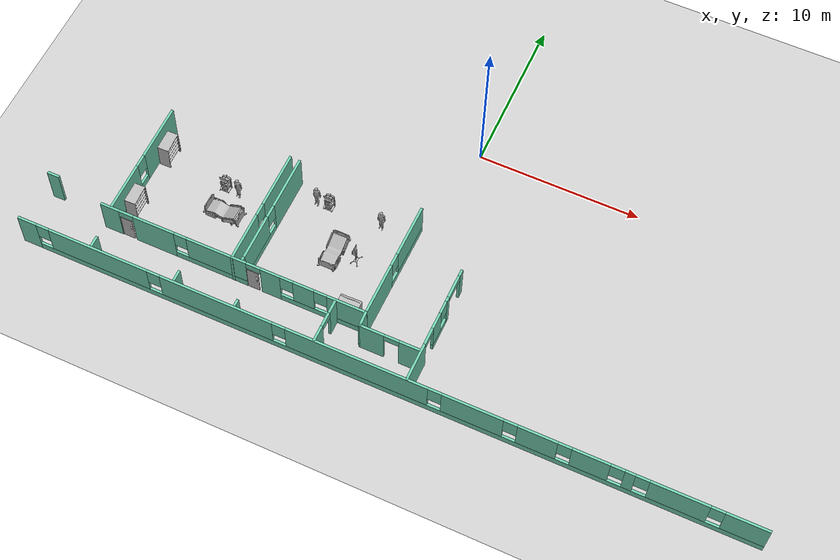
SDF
<sdf version="1.6">
 <world name="default">
  <model name="ground_plane">
   <static>1</static>
   <link name="link">
    <collision name="collision">
     <geometry><plane><normal>0 0 1</normal><size>100 100</size></plane></geometry>
     <surface><friction><ode><mu>100</mu><mu2>50</mu2></ode></friction></surface>
    </collision>
    <visual name="visual">
     <cast_shadows>0</cast_shadows>
     <geometry><plane><normal>0 0 1</normal><size>100 100</size></plane></geometry>
     <material>
      <script><uri>file://media/materials/scripts/gazebo.material</uri><name>Gazebo/Grey</name></script>
     </material>
    </visual>
   </link>
  </model>
  <model name="Hospital_empty">
   <pose>0.7078 0.61575 0 0 -0 0</pose>
   <link name="Wall_1">
    <pose>0.002999 -16.937 0 0 -0 0</pose>
    <visual name="Wall_1_Visual_0">
     <pose>-21.7746 0 1.25 0 -0 0</pose>
     <geometry><box><size>1.20077 0.15 2.5</size></box></geometry>
     <material>
      <script><uri>file://media/materials/scripts/gazebo.material</uri><name>Gazebo/Grey</name></script>
      <ambient>0.435294 0.796078 0.67451 1</ambient>
     </material>
    </visual>
    <collision name="Wall_1_Collision_0">
     <geometry><box><size>1.20077 0.15 2.5</size></box></geometry>
     <pose>-21.7746 0 1.25 0 -0 0</pose>
    </collision>
    <visual name="Wall_1_Visual_1">
     <pose>0.600387 0 0.25 0 -0 0</pose>
     <geometry><box><size>43.5492 0.15 0.5</size></box></geometry>
     <material>
      <script><uri>file://media/materials/scripts/gazebo.material</uri><name>Gazebo/Grey</name></script>
      <ambient>0.435294 0.796078 0.67451 1</ambient>
     </material>
    </visual>
    <collision name="Wall_1_Collision_1">
     <geometry><box><size>43.5492 0.15 0.5</size></box></geometry>
     <pose>0.600387 0 0.25 0 -0 0</pose>
    </collision>
    <visual name="Wall_1_Visual_2">
     <pose>-17.2192 0 1.5 0 -0 0</pose>
     <geometry><box><size>6.31 0.15 2</size></box></geometry>
     <material>
      <script><uri>file://media/materials/scripts/gazebo.material</uri><name>Gazebo/Grey</name></script>
      <ambient>0.435294 0.796078 0.67451 1</ambient>
     </material>
    </visual>
    <collision name="Wall_1_Collision_2">
     <geometry><box><size>6.31 0.15 2</size></box></geometry>
     <pose>-17.2192 0 1.5 0 -0 0</pose>
    </collision>
    <visual name="Wall_1_Visual_3">
     <pose>-9.77173 0 1.5 0 -0 0</pose>
     <geometry><box><size>6.985 0.15 2</size></box></geometry>
     <material>
      <script><uri>file://media/materials/scripts/gazebo.material</uri><name>Gazebo/Grey</name></script>
      <ambient>0.435294 0.796078 0.67451 1</ambient>
     </material>
    </visual>
    <collision name="Wall_1_Collision_3">
     <geometry><box><size>6.985 0.15 2</size></box></geometry>
     <pose>-9.77173 0 1.5 0 -0 0</pose>
    </collision>
    <visual name="Wall_1_Visual_4">
     <pose>-1.19923 0 1.5 0 -0 0</pose>
     <geometry><box><size>8.56 0.15 2</size></box></geometry>
     <material>
      <script><uri>file://media/materials/scripts/gazebo.material</uri><name>Gazebo/Grey</name></script>
      <ambient>0.435294 0.796078 0.67451 1</ambient>
     </material>
    </visual>
    <collision name="Wall_1_Collision_4">
     <geometry><box><size>8.56 0.15 2</size></box></geometry>
     <pose>-1.19923 0 1.5 0 -0 0</pose>
    </collision>
    <visual name="Wall_1_Visual_5">
     <pose>5.68577 0 1.5 0 -0 0</pose>
     <geometry><box><size>3.61 0.15 2</size></box></geometry>
     <material>
      <script><uri>file://media/materials/scripts/gazebo.material</uri><name>Gazebo/Grey</name></script>
      <ambient>0.435294 0.796078 0.67451 1</ambient>
     </material>
    </visual>
    <collision name="Wall_1_Collision_5">
     <geometry><box><size>3.61 0.15 2</size></box></geometry>
     <pose>5.68577 0 1.5 0 -0 0</pose>
    </collision>
    <visual name="Wall_1_Visual_6">
     <pose>9.44327 0 1.5 0 -0 0</pose>
     <geometry><box><size>2.305 0.15 2</size></box></geometry>
     <material>
      <script><uri>file://media/materials/scripts/gazebo.material</uri><name>Gazebo/Grey</name></script>
      <ambient>0.435294 0.796078 0.67451 1</ambient>
     </material>
    </visual>
    <collision name="Wall_1_Collision_6">
     <geometry><box><size>2.305 0.15 2</size></box></geometry>
     <pose>9.44327 0 1.5 0 -0 0</pose>
    </collision>
    <visual name="Wall_1_Visual_7">
     <pose>12.4808 0 1.5 0 -0 0</pose>
     <geometry><box><size>2.17 0.15 2</size></box></geometry>
     <material>
      <script><uri>file://media/materials/scripts/gazebo.material</uri><name>Gazebo/Grey</name></script>
      <ambient>0.435294 0.796078 0.67451 1</ambient>
     </material>
    </visual>
    <collision name="Wall_1_Collision_7">
     <geometry><box><size>2.17 0.15 2</size></box></geometry>
     <pose>12.4808 0 1.5 0 -0 0</pose>
    </collision>
    <visual name="Wall_1_Visual_8">
     <pose>14.6633 0 1.5 0 -0 0</pose>
     <geometry><box><size>0.595 0.15 2</size></box></geometry>
     <material>
      <script><uri>file://media/materials/scripts/gazebo.material</uri><name>Gazebo/Grey</name></script>
      <ambient>0.435294 0.796078 0.67451 1</ambient>
     </material>
    </visual>
    <collision name="Wall_1_Collision_8">
     <geometry><box><size>0.595 0.15 2</size></box></geometry>
     <pose>14.6633 0 1.5 0 -0 0</pose>
    </collision>
    <visual name="Wall_1_Visual_9">
     <pose>17.4308 0 1.5 0 -0 0</pose>
     <geometry><box><size>3.34 0.15 2</size></box></geometry>
     <material>
      <script><uri>file://media/materials/scripts/gazebo.material</uri><name>Gazebo/Grey</name></script>
      <ambient>0.435294 0.796078 0.67451 1</ambient>
     </material>
    </visual>
    <collision name="Wall_1_Collision_9">
     <geometry><box><size>3.34 0.15 2</size></box></geometry>
     <pose>17.4308 0 1.5 0 -0 0</pose>
    </collision>
    <visual name="Wall_1_Visual_10">
     <pose>21.1379 0 1.5 0 -0 0</pose>
     <geometry><box><size>2.47423 0.15 2</size></box></geometry>
     <material>
      <script><uri>file://media/materials/scripts/gazebo.material</uri><name>Gazebo/Grey</name></script>
      <ambient>0.435294 0.796078 0.67451 1</ambient>
     </material>
    </visual>
    <collision name="Wall_1_Collision_10">
     <geometry><box><size>2.47423 0.15 2</size></box></geometry>
     <pose>21.1379 0 1.5 0 -0 0</pose>
    </collision>
    <visual name="Wall_1_Visual_11">
     <pose>-20.7742 0 1.9 0 -0 0</pose>
     <geometry><box><size>0.8 0.15 1.2</size></box></geometry>
     <material>
      <script><uri>file://media/materials/scripts/gazebo.material</uri><name>Gazebo/Grey</name></script>
      <ambient>0.435294 0.796078 0.67451 1</ambient>
     </material>
    </visual>
    <collision name="Wall_1_Collision_11">
     <geometry><box><size>0.8 0.15 1.2</size></box></geometry>
     <pose>-20.7742 0 1.9 0 -0 0</pose>
    </collision>
    <visual name="Wall_1_Visual_12">
     <pose>-13.6642 0 1.9 0 -0 0</pose>
     <geometry><box><size>0.8 0.15 1.2</size></box></geometry>
     <material>
      <script><uri>file://media/materials/scripts/gazebo.material</uri><name>Gazebo/Grey</name></script>
      <ambient>0.435294 0.796078 0.67451 1</ambient>
     </material>
    </visual>
    <collision name="Wall_1_Collision_12">
     <geometry><box><size>0.8 0.15 1.2</size></box></geometry>
     <pose>-13.6642 0 1.9 0 -0 0</pose>
    </collision>
    <visual name="Wall_1_Visual_13">
     <pose>-5.87923 0 1.9 0 -0 0</pose>
     <geometry><box><size>0.8 0.15 1.2</size></box></geometry>
     <material>
      <script><uri>file://media/materials/scripts/gazebo.material</uri><name>Gazebo/Grey</name></script>
      <ambient>0.435294 0.796078 0.67451 1</ambient>
     </material>
    </visual>
    <collision name="Wall_1_Collision_13">
     <geometry><box><size>0.8 0.15 1.2</size></box></geometry>
     <pose>-5.87923 0 1.9 0 -0 0</pose>
    </collision>
    <visual name="Wall_1_Visual_14">
     <pose>3.48077 0 1.9 0 -0 0</pose>
     <geometry><box><size>0.8 0.15 1.2</size></box></geometry>
     <material>
      <script><uri>file://media/materials/scripts/gazebo.material</uri><name>Gazebo/Grey</name></script>
      <ambient>0.435294 0.796078 0.67451 1</ambient>
     </material>
    </visual>
    <collision name="Wall_1_Collision_14">
     <geometry><box><size>0.8 0.15 1.2</size></box></geometry>
     <pose>3.48077 0 1.9 0 -0 0</pose>
    </collision>
    <visual name="Wall_1_Visual_15">
     <pose>7.89077 0 1.9 0 -0 0</pose>
     <geometry><box><size>0.8 0.15 1.2</size></box></geometry>
     <material>
      <script><uri>file://media/materials/scripts/gazebo.material</uri><name>Gazebo/Grey</name></script>
      <ambient>0.435294 0.796078 0.67451 1</ambient>
     </material>
    </visual>
    <collision name="Wall_1_Collision_15">
     <geometry><box><size>0.8 0.15 1.2</size></box></geometry>
     <pose>7.89077 0 1.9 0 -0 0</pose>
    </collision>
    <visual name="Wall_1_Visual_16">
     <pose>10.9958 0 1.9 0 -0 0</pose>
     <geometry><box><size>0.8 0.15 1.2</size></box></geometry>
     <material>
      <script><uri>file://media/materials/scripts/gazebo.material</uri><name>Gazebo/Grey</name></script>
      <ambient>0.435294 0.796078 0.67451 1</ambient>
     </material>
    </visual>
    <collision name="Wall_1_Collision_16">
     <geometry><box><size>0.8 0.15 1.2</size></box></geometry>
     <pose>10.9958 0 1.9 0 -0 0</pose>
    </collision>
    <visual name="Wall_1_Visual_17">
     <pose>13.9658 0 1.9 0 -0 0</pose>
     <geometry><box><size>0.8 0.15 1.2</size></box></geometry>
     <material>
      <script><uri>file://media/materials/scripts/gazebo.material</uri><name>Gazebo/Grey</name></script>
      <ambient>0.435294 0.796078 0.67451 1</ambient>
     </material>
    </visual>
    <collision name="Wall_1_Collision_17">
     <geometry><box><size>0.8 0.15 1.2</size></box></geometry>
     <pose>13.9658 0 1.9 0 -0 0</pose>
    </collision>
    <visual name="Wall_1_Visual_18">
     <pose>15.3608 0 1.9 0 -0 0</pose>
     <geometry><box><size>0.8 0.15 1.2</size></box></geometry>
     <material>
      <script><uri>file://media/materials/scripts/gazebo.material</uri><name>Gazebo/Grey</name></script>
      <ambient>0.435294 0.796078 0.67451 1</ambient>
     </material>
    </visual>
    <collision name="Wall_1_Collision_18">
     <geometry><box><size>0.8 0.15 1.2</size></box></geometry>
     <pose>15.3608 0 1.9 0 -0 0</pose>
    </collision>
    <visual name="Wall_1_Visual_19">
     <pose>19.5008 0 1.9 0 -0 0</pose>
     <geometry><box><size>0.8 0.15 1.2</size></box></geometry>
     <material>
      <script><uri>file://media/materials/scripts/gazebo.material</uri><name>Gazebo/Grey</name></script>
      <ambient>0.435294 0.796078 0.67451 1</ambient>
     </material>
    </visual>
    <collision name="Wall_1_Collision_19">
     <geometry><box><size>0.8 0.15 1.2</size></box></geometry>
     <pose>19.5008 0 1.9 0 -0 0</pose>
    </collision>
   </link>
   <link name="Wall_120">
    <pose>1.827 -13.228 0 0 0 -1.5708</pose>
    <visual name="Wall_120_Visual_0">
     <pose>-3.53507 0 1.25 0 -0 0</pose>
     <geometry><box><size>0.429854 0.15 2.5</size></box></geometry>
     <material>
      <script><uri>file://media/materials/scripts/gazebo.material</uri><name>Gazebo/Grey</name></script>
      <ambient>0.435294 0.796078 0.67451 1</ambient>
     </material>
    </visual>
    <collision name="Wall_120_Collision_0">
     <geometry><box><size>0.429854 0.15 2.5</size></box></geometry>
     <pose>-3.53507 0 1.25 0 -0 0</pose>
    </collision>
    <visual name="Wall_120_Visual_1">
     <pose>-1.69703 0 1.25 0 -0 0</pose>
     <geometry><box><size>0.315461 0.15 2.5</size></box></geometry>
     <material>
      <script><uri>file://media/materials/scripts/gazebo.material</uri><name>Gazebo/Grey</name></script>
      <ambient>0.435294 0.796078 0.67451 1</ambient>
     </material>
    </visual>
    <collision name="Wall_120_Collision_1">
     <geometry><box><size>0.315461 0.15 2.5</size></box></geometry>
     <pose>-1.69703 0 1.25 0 -0 0</pose>
    </collision>
    <visual name="Wall_120_Visual_2">
     <pose>2.55431 0 1.25 0 -0 0</pose>
     <geometry><box><size>2.39139 0.15 2.5</size></box></geometry>
     <material>
      <script><uri>file://media/materials/scripts/gazebo.material</uri><name>Gazebo/Grey</name></script>
      <ambient>0.435294 0.796078 0.67451 1</ambient>
     </material>
    </visual>
    <collision name="Wall_120_Collision_2">
     <geometry><box><size>2.39139 0.15 2.5</size></box></geometry>
     <pose>2.55431 0 1.25 0 -0 0</pose>
    </collision>
    <visual name="Wall_120_Visual_3">
     <pose>-0.625311 0 0.25 0 -0 0</pose>
     <geometry><box><size>1.82798 0.15 0.5</size></box></geometry>
     <material>
      <script><uri>file://media/materials/scripts/gazebo.material</uri><name>Gazebo/Grey</name></script>
      <ambient>0.435294 0.796078 0.67451 1</ambient>
     </material>
    </visual>
    <collision name="Wall_120_Collision_3">
     <geometry><box><size>1.82798 0.15 0.5</size></box></geometry>
     <pose>-0.625311 0 0.25 0 -0 0</pose>
    </collision>
    <visual name="Wall_120_Visual_4">
     <pose>-0.225311 0 1.5 0 -0 0</pose>
     <geometry><box><size>1.02798 0.15 2</size></box></geometry>
     <material>
      <script><uri>file://media/materials/scripts/gazebo.material</uri><name>Gazebo/Grey</name></script>
      <ambient>0.435294 0.796078 0.67451 1</ambient>
     </material>
    </visual>
    <collision name="Wall_120_Collision_4">
     <geometry><box><size>1.02798 0.15 2</size></box></geometry>
     <pose>-0.225311 0 1.5 0 -0 0</pose>
    </collision>
    <visual name="Wall_120_Visual_5">
     <pose>-1.1393 0 1.9 0 -0 0</pose>
     <geometry><box><size>0.8 0.15 1.2</size></box></geometry>
     <material>
      <script><uri>file://media/materials/scripts/gazebo.material</uri><name>Gazebo/Grey</name></script>
      <ambient>0.435294 0.796078 0.67451 1</ambient>
     </material>
    </visual>
    <collision name="Wall_120_Collision_5">
     <geometry><box><size>0.8 0.15 1.2</size></box></geometry>
     <pose>-1.1393 0 1.9 0 -0 0</pose>
    </collision>
    <visual name="Wall_120_Visual_6">
     <pose>-2.58745 0 2.25 0 -0 0</pose>
     <geometry><box><size>1.46538 0.15 0.5</size></box></geometry>
     <material>
      <script><uri>file://media/materials/scripts/gazebo.material</uri><name>Gazebo/Grey</name></script>
      <ambient>0.435294 0.796078 0.67451 1</ambient>
     </material>
    </visual>
    <collision name="Wall_120_Collision_6">
     <geometry><box><size>1.46538 0.15 0.5</size></box></geometry>
     <pose>-2.58745 0 2.25 0 -0 0</pose>
    </collision>
    <visual name="Wall_120_Visual_7">
     <pose>0.823647 0 2.25 0 -0 0</pose>
     <geometry><box><size>1.06994 0.15 0.5</size></box></geometry>
     <material>
      <script><uri>file://media/materials/scripts/gazebo.material</uri><name>Gazebo/Grey</name></script>
      <ambient>0.435294 0.796078 0.67451 1</ambient>
     </material>
    </visual>
    <collision name="Wall_120_Collision_7">
     <geometry><box><size>1.06994 0.15 0.5</size></box></geometry>
     <pose>0.823647 0 2.25 0 -0 0</pose>
    </collision>
   </link>
   <link name="Wall_27">
    <pose>-17.9239 -10.5019 0 0 0 -1.57074</pose>
    <visual name="Wall_27_Visual_0">
     <pose>-1.97654 0 1.25 0 -0 0</pose>
     <geometry><box><size>3.50967 0.15 2.5</size></box></geometry>
     <material>
      <script><uri>file://media/materials/scripts/gazebo.material</uri><name>Gazebo/Grey</name></script>
      <ambient>0.435294 0.796078 0.67451 1</ambient>
     </material>
    </visual>
    <collision name="Wall_27_Collision_0">
     <geometry><box><size>3.50967 0.15 2.5</size></box></geometry>
     <pose>-1.97654 0 1.25 0 -0 0</pose>
    </collision>
    <visual name="Wall_27_Visual_1">
     <pose>1.75483 0 0.25 0 -0 0</pose>
     <geometry><box><size>3.95309 0.15 0.5</size></box></geometry>
     <material>
      <script><uri>file://media/materials/scripts/gazebo.material</uri><name>Gazebo/Grey</name></script>
      <ambient>0.435294 0.796078 0.67451 1</ambient>
     </material>
    </visual>
    <collision name="Wall_27_Collision_1">
     <geometry><box><size>3.95309 0.15 0.5</size></box></geometry>
     <pose>1.75483 0 0.25 0 -0 0</pose>
    </collision>
    <visual name="Wall_27_Visual_2">
     <pose>2.15483 0 1.5 0 -0 0</pose>
     <geometry><box><size>3.15309 0.15 2</size></box></geometry>
     <material>
      <script><uri>file://media/materials/scripts/gazebo.material</uri><name>Gazebo/Grey</name></script>
      <ambient>0.435294 0.796078 0.67451 1</ambient>
     </material>
    </visual>
    <collision name="Wall_27_Collision_2">
     <geometry><box><size>3.15309 0.15 2</size></box></geometry>
     <pose>2.15483 0 1.5 0 -0 0</pose>
    </collision>
    <visual name="Wall_27_Visual_3">
     <pose>0.17829 0 1.9 0 -0 0</pose>
     <geometry><box><size>0.8 0.15 1.2</size></box></geometry>
     <material>
      <script><uri>file://media/materials/scripts/gazebo.material</uri><name>Gazebo/Grey</name></script>
      <ambient>0.435294 0.796078 0.67451 1</ambient>
     </material>
    </visual>
    <collision name="Wall_27_Collision_3">
     <geometry><box><size>0.8 0.15 1.2</size></box></geometry>
     <pose>0.17829 0 1.9 0 -0 0</pose>
    </collision>
   </link>
   <link name="Wall_29">
    <pose>-10.1967 -14.1601 0 0 -0 0</pose>
    <visual name="Wall_29_Visual_0">
     <pose>-7.78661 0 1.25 0 -0 0</pose>
     <geometry><box><size>1.17678 0.15 2.5</size></box></geometry>
     <material>
      <script><uri>file://media/materials/scripts/gazebo.material</uri><name>Gazebo/Grey</name></script>
      <ambient>0.435294 0.796078 0.67451 1</ambient>
     </material>
    </visual>
    <collision name="Wall_29_Collision_0">
     <geometry><box><size>1.17678 0.15 2.5</size></box></geometry>
     <pose>-7.78661 0 1.25 0 -0 0</pose>
    </collision>
    <visual name="Wall_29_Visual_1">
     <pose>-4.98142 0 1.25 0 -0 0</pose>
     <geometry><box><size>2.6336 0.15 2.5</size></box></geometry>
     <material>
      <script><uri>file://media/materials/scripts/gazebo.material</uri><name>Gazebo/Grey</name></script>
      <ambient>0.435294 0.796078 0.67451 1</ambient>
     </material>
    </visual>
    <collision name="Wall_29_Collision_1">
     <geometry><box><size>2.6336 0.15 2.5</size></box></geometry>
     <pose>-4.98142 0 1.25 0 -0 0</pose>
    </collision>
    <visual name="Wall_29_Visual_2">
     <pose>2.41717 0 1.25 0 -0 0</pose>
     <geometry><box><size>1.21642 0.15 2.5</size></box></geometry>
     <material>
      <script><uri>file://media/materials/scripts/gazebo.material</uri><name>Gazebo/Grey</name></script>
      <ambient>0.435294 0.796078 0.67451 1</ambient>
     </material>
    </visual>
    <collision name="Wall_29_Collision_2">
     <geometry><box><size>1.21642 0.15 2.5</size></box></geometry>
     <pose>2.41717 0 1.25 0 -0 0</pose>
    </collision>
    <visual name="Wall_29_Visual_3">
     <pose>-1.37783 0 0.25 0 -0 0</pose>
     <geometry><box><size>4.57358 0.15 0.5</size></box></geometry>
     <material>
      <script><uri>file://media/materials/scripts/gazebo.material</uri><name>Gazebo/Grey</name></script>
      <ambient>0.435294 0.796078 0.67451 1</ambient>
     </material>
    </visual>
    <collision name="Wall_29_Collision_3">
     <geometry><box><size>4.57358 0.15 0.5</size></box></geometry>
     <pose>-1.37783 0 0.25 0 -0 0</pose>
    </collision>
    <visual name="Wall_29_Visual_4">
     <pose>5.70019 0 0.25 0 -0 0</pose>
     <geometry><box><size>5.34962 0.15 0.5</size></box></geometry>
     <material>
      <script><uri>file://media/materials/scripts/gazebo.material</uri><name>Gazebo/Grey</name></script>
      <ambient>0.435294 0.796078 0.67451 1</ambient>
     </material>
    </visual>
    <collision name="Wall_29_Collision_4">
     <geometry><box><size>5.34962 0.15 0.5</size></box></geometry>
     <pose>5.70019 0 0.25 0 -0 0</pose>
    </collision>
    <visual name="Wall_29_Visual_5">
     <pose>-0.97783 0 1.5 0 -0 0</pose>
     <geometry><box><size>3.77358 0.15 2</size></box></geometry>
     <material>
      <script><uri>file://media/materials/scripts/gazebo.material</uri><name>Gazebo/Grey</name></script>
      <ambient>0.435294 0.796078 0.67451 1</ambient>
     </material>
    </visual>
    <collision name="Wall_29_Collision_5">
     <geometry><box><size>3.77358 0.15 2</size></box></geometry>
     <pose>-0.97783 0 1.5 0 -0 0</pose>
    </collision>
    <visual name="Wall_29_Visual_6">
     <pose>-0.97783 0 1.5 0 -0 0</pose>
     <geometry><box><size>3.77358 0.15 2</size></box></geometry>
     <material>
      <script><uri>file://media/materials/scripts/gazebo.material</uri><name>Gazebo/Grey</name></script>
      <ambient>0.435294 0.796078 0.67451 1</ambient>
     </material>
    </visual>
    <collision name="Wall_29_Collision_6">
     <geometry><box><size>3.77358 0.15 2</size></box></geometry>
     <pose>-0.97783 0 1.5 0 -0 0</pose>
    </collision>
    <visual name="Wall_29_Visual_7">
     <pose>4.47538 0 1.5 0 -0 0</pose>
     <geometry><box><size>1.3 0.15 2</size></box></geometry>
     <material>
      <script><uri>file://media/materials/scripts/gazebo.material</uri><name>Gazebo/Grey</name></script>
      <ambient>0.435294 0.796078 0.67451 1</ambient>
     </material>
    </visual>
    <collision name="Wall_29_Collision_7">
     <geometry><box><size>1.3 0.15 2</size></box></geometry>
     <pose>4.47538 0 1.5 0 -0 0</pose>
    </collision>
    <visual name="Wall_29_Visual_8">
     <pose>7.15019 0 1.5 0 -0 0</pose>
     <geometry><box><size>2.44962 0.15 2</size></box></geometry>
     <material>
      <script><uri>file://media/materials/scripts/gazebo.material</uri><name>Gazebo/Grey</name></script>
      <ambient>0.435294 0.796078 0.67451 1</ambient>
     </material>
    </visual>
    <collision name="Wall_29_Collision_8">
     <geometry><box><size>2.44962 0.15 2</size></box></geometry>
     <pose>7.15019 0 1.5 0 -0 0</pose>
    </collision>
    <visual name="Wall_29_Visual_9">
     <pose>-3.26462 0 1.9 0 -0 0</pose>
     <geometry><box><size>0.8 0.15 1.2</size></box></geometry>
     <material>
      <script><uri>file://media/materials/scripts/gazebo.material</uri><name>Gazebo/Grey</name></script>
      <ambient>0.435294 0.796078 0.67451 1</ambient>
     </material>
    </visual>
    <collision name="Wall_29_Collision_9">
     <geometry><box><size>0.8 0.15 1.2</size></box></geometry>
     <pose>-3.26462 0 1.9 0 -0 0</pose>
    </collision>
    <visual name="Wall_29_Visual_10">
     <pose>3.42538 0 1.9 0 -0 0</pose>
     <geometry><box><size>0.8 0.15 1.2</size></box></geometry>
     <material>
      <script><uri>file://media/materials/scripts/gazebo.material</uri><name>Gazebo/Grey</name></script>
      <ambient>0.435294 0.796078 0.67451 1</ambient>
     </material>
    </visual>
    <collision name="Wall_29_Collision_10">
     <geometry><box><size>0.8 0.15 1.2</size></box></geometry>
     <pose>3.42538 0 1.9 0 -0 0</pose>
    </collision>
    <visual name="Wall_29_Visual_11">
     <pose>5.52538 0 1.9 0 -0 0</pose>
     <geometry><box><size>0.8 0.15 1.2</size></box></geometry>
     <material>
      <script><uri>file://media/materials/scripts/gazebo.material</uri><name>Gazebo/Grey</name></script>
      <ambient>0.435294 0.796078 0.67451 1</ambient>
     </material>
    </visual>
    <collision name="Wall_29_Collision_11">
     <geometry><box><size>0.8 0.15 1.2</size></box></geometry>
     <pose>5.52538 0 1.9 0 -0 0</pose>
    </collision>
    <visual name="Wall_29_Visual_12">
     <pose>-6.74822 0 2.25 0 -0 0</pose>
     <geometry><box><size>0.9 0.15 0.5</size></box></geometry>
     <material>
      <script><uri>file://media/materials/scripts/gazebo.material</uri><name>Gazebo/Grey</name></script>
      <ambient>0.435294 0.796078 0.67451 1</ambient>
     </material>
    </visual>
    <collision name="Wall_29_Collision_12">
     <geometry><box><size>0.9 0.15 0.5</size></box></geometry>
     <pose>-6.74822 0 2.25 0 -0 0</pose>
    </collision>
    <visual name="Wall_29_Visual_13">
     <pose>1.35896 0 2.25 0 -0 0</pose>
     <geometry><box><size>0.9 0.15 0.5</size></box></geometry>
     <material>
      <script><uri>file://media/materials/scripts/gazebo.material</uri><name>Gazebo/Grey</name></script>
      <ambient>0.435294 0.796078 0.67451 1</ambient>
     </material>
    </visual>
    <collision name="Wall_29_Collision_13">
     <geometry><box><size>0.9 0.15 0.5</size></box></geometry>
     <pose>1.35896 0 2.25 0 -0 0</pose>
    </collision>
    <visual name="Wall_29_Visual_14">
     <pose>1.35896 0 2.25 0 -0 0</pose>
     <geometry><box><size>0.9 0.15 0.5</size></box></geometry>
     <material>
      <script><uri>file://media/materials/scripts/gazebo.material</uri><name>Gazebo/Grey</name></script>
      <ambient>0.435294 0.796078 0.67451 1</ambient>
     </material>
    </visual>
    <collision name="Wall_29_Collision_14">
     <geometry><box><size>0.9 0.15 0.5</size></box></geometry>
     <pose>1.35896 0 2.25 0 -0 0</pose>
    </collision>
   </link>
   <link name="Wall_30">
    <pose>-1.87337 -10.5028 0 0 -0 1.56444</pose>
    <visual name="Wall_30_Visual_0">
     <pose>-2.06072 0 1.25 0 -0 0</pose>
     <geometry><box><size>3.38045 0.15 2.5</size></box></geometry>
     <material>
      <script><uri>file://media/materials/scripts/gazebo.material</uri><name>Gazebo/Grey</name></script>
      <ambient>0.435294 0.796078 0.67451 1</ambient>
     </material>
    </visual>
    <collision name="Wall_30_Collision_0">
     <geometry><box><size>3.38045 0.15 2.5</size></box></geometry>
     <pose>-2.06072 0 1.25 0 -0 0</pose>
    </collision>
    <visual name="Wall_30_Visual_1">
     <pose>1.69023 0 0.25 0 -0 0</pose>
     <geometry><box><size>4.12145 0.15 0.5</size></box></geometry>
     <material>
      <script><uri>file://media/materials/scripts/gazebo.material</uri><name>Gazebo/Grey</name></script>
      <ambient>0.435294 0.796078 0.67451 1</ambient>
     </material>
    </visual>
    <collision name="Wall_30_Collision_1">
     <geometry><box><size>4.12145 0.15 0.5</size></box></geometry>
     <pose>1.69023 0 0.25 0 -0 0</pose>
    </collision>
    <visual name="Wall_30_Visual_2">
     <pose>2.09023 0 1.5 0 -0 0</pose>
     <geometry><box><size>3.32145 0.15 2</size></box></geometry>
     <material>
      <script><uri>file://media/materials/scripts/gazebo.material</uri><name>Gazebo/Grey</name></script>
      <ambient>0.435294 0.796078 0.67451 1</ambient>
     </material>
    </visual>
    <collision name="Wall_30_Collision_2">
     <geometry><box><size>3.32145 0.15 2</size></box></geometry>
     <pose>2.09023 0 1.5 0 -0 0</pose>
    </collision>
    <visual name="Wall_30_Visual_3">
     <pose>0.029504 0 1.9 0 -0 0</pose>
     <geometry><box><size>0.8 0.15 1.2</size></box></geometry>
     <material>
      <script><uri>file://media/materials/scripts/gazebo.material</uri><name>Gazebo/Grey</name></script>
      <ambient>0.435294 0.796078 0.67451 1</ambient>
     </material>
    </visual>
    <collision name="Wall_30_Collision_3">
     <geometry><box><size>0.8 0.15 1.2</size></box></geometry>
     <pose>0.029504 0 1.9 0 -0 0</pose>
    </collision>
   </link>
   <link name="Wall_33">
    <pose>-10.174 -10.496 0 0 -0 1.5708</pose>
    <visual name="Wall_33_Visual_0">
     <pose>-2.18363 0 1.25 0 -0 0</pose>
     <geometry><box><size>3.13274 0.15 2.5</size></box></geometry>
     <material>
      <script><uri>file://media/materials/scripts/gazebo.material</uri><name>Gazebo/Grey</name></script>
      <ambient>0.435294 0.796078 0.67451 1</ambient>
     </material>
    </visual>
    <collision name="Wall_33_Collision_0">
     <geometry><box><size>3.13274 0.15 2.5</size></box></geometry>
     <pose>-2.18363 0 1.25 0 -0 0</pose>
    </collision>
    <visual name="Wall_33_Visual_1">
     <pose>1.56637 0 0.25 0 -0 0</pose>
     <geometry><box><size>4.36726 0.15 0.5</size></box></geometry>
     <material>
      <script><uri>file://media/materials/scripts/gazebo.material</uri><name>Gazebo/Grey</name></script>
      <ambient>0.435294 0.796078 0.67451 1</ambient>
     </material>
    </visual>
    <collision name="Wall_33_Collision_1">
     <geometry><box><size>4.36726 0.15 0.5</size></box></geometry>
     <pose>1.56637 0 0.25 0 -0 0</pose>
    </collision>
    <visual name="Wall_33_Visual_2">
     <pose>1.96637 0 1.5 0 -0 0</pose>
     <geometry><box><size>3.56726 0.15 2</size></box></geometry>
     <material>
      <script><uri>file://media/materials/scripts/gazebo.material</uri><name>Gazebo/Grey</name></script>
      <ambient>0.435294 0.796078 0.67451 1</ambient>
     </material>
    </visual>
    <collision name="Wall_33_Collision_2">
     <geometry><box><size>3.56726 0.15 2</size></box></geometry>
     <pose>1.96637 0 1.5 0 -0 0</pose>
    </collision>
    <visual name="Wall_33_Visual_3">
     <pose>-0.217261 0 1.9 0 -0 0</pose>
     <geometry><box><size>0.8 0.15 1.2</size></box></geometry>
     <material>
      <script><uri>file://media/materials/scripts/gazebo.material</uri><name>Gazebo/Grey</name></script>
      <ambient>0.435294 0.796078 0.67451 1</ambient>
     </material>
    </visual>
    <collision name="Wall_33_Collision_3">
     <geometry><box><size>0.8 0.15 1.2</size></box></geometry>
     <pose>-0.217261 0 1.9 0 -0 0</pose>
    </collision>
   </link>
   <link name="Wall_35">
    <pose>-9.574 -10.391 0 0 0 -1.5708</pose>
    <visual name="Wall_35_Visual_0">
     <pose>-1.91963 0 1.25 0 -0 0</pose>
     <geometry><box><size>3.41074 0.15 2.5</size></box></geometry>
     <material>
      <script><uri>file://media/materials/scripts/gazebo.material</uri><name>Gazebo/Grey</name></script>
      <ambient>0.435294 0.796078 0.67451 1</ambient>
     </material>
    </visual>
    <collision name="Wall_35_Collision_0">
     <geometry><box><size>3.41074 0.15 2.5</size></box></geometry>
     <pose>-1.91963 0 1.25 0 -0 0</pose>
    </collision>
    <visual name="Wall_35_Visual_1">
     <pose>1.70537 0 0.25 0 -0 0</pose>
     <geometry><box><size>3.83926 0.15 0.5</size></box></geometry>
     <material>
      <script><uri>file://media/materials/scripts/gazebo.material</uri><name>Gazebo/Grey</name></script>
      <ambient>0.435294 0.796078 0.67451 1</ambient>
     </material>
    </visual>
    <collision name="Wall_35_Collision_1">
     <geometry><box><size>3.83926 0.15 0.5</size></box></geometry>
     <pose>1.70537 0 0.25 0 -0 0</pose>
    </collision>
    <visual name="Wall_35_Visual_2">
     <pose>2.10537 0 1.5 0 -0 0</pose>
     <geometry><box><size>3.03926 0.15 2</size></box></geometry>
     <material>
      <script><uri>file://media/materials/scripts/gazebo.material</uri><name>Gazebo/Grey</name></script>
      <ambient>0.435294 0.796078 0.67451 1</ambient>
     </material>
    </visual>
    <collision name="Wall_35_Collision_2">
     <geometry><box><size>3.03926 0.15 2</size></box></geometry>
     <pose>2.10537 0 1.5 0 -0 0</pose>
    </collision>
    <visual name="Wall_35_Visual_3">
     <pose>0.185739 0 1.9 0 -0 0</pose>
     <geometry><box><size>0.8 0.15 1.2</size></box></geometry>
     <material>
      <script><uri>file://media/materials/scripts/gazebo.material</uri><name>Gazebo/Grey</name></script>
      <ambient>0.435294 0.796078 0.67451 1</ambient>
     </material>
    </visual>
    <collision name="Wall_35_Collision_3">
     <geometry><box><size>0.8 0.15 1.2</size></box></geometry>
     <pose>0.185739 0 1.9 0 -0 0</pose>
    </collision>
   </link>
   <link name="Wall_36">
    <collision name="Wall_36_Collision">
     <geometry><box><size>0.25 0.15 2.5</size></box></geometry>
     <pose>0 0 1.25 0 -0 0</pose>
    </collision>
    <visual name="Wall_36_Visual">
     <pose>0 0 1.25 0 -0 0</pose>
     <geometry><box><size>0.25 0.15 2.5</size></box></geometry>
     <material>
      <script><uri>file://media/materials/scripts/gazebo.material</uri><name>Gazebo/Grey</name></script>
      <ambient>0.435294 0.796078 0.67451 1</ambient>
     </material>
    </visual>
    <pose>-9.574 -13.991 0 0 0 -1.5708</pose>
   </link>
   <link name="Wall_38">
    <collision name="Wall_38_Collision">
     <geometry><box><size>0.75 0.15 2.5</size></box></geometry>
     <pose>0 0 1.25 0 -0 0</pose>
    </collision>
    <visual name="Wall_38_Visual">
     <pose>0 0 1.25 0 -0 0</pose>
     <geometry><box><size>0.75 0.15 2.5</size></box></geometry>
     <material>
      <script><uri>file://media/materials/scripts/gazebo.material</uri><name>Gazebo/Grey</name></script>
      <ambient>0.435294 0.796078 0.67451 1</ambient>
     </material>
    </visual>
    <pose>-22.001 -13.61 0 0 -0 0</pose>
   </link>
   <link name="Wall_40">
    <collision name="Wall_40_Collision">
     <geometry><box><size>0.75 0.15 2.5</size></box></geometry>
     <pose>0 0 1.25 0 -0 0</pose>
    </collision>
    <visual name="Wall_40_Visual">
     <pose>0 0 1.25 0 -0 0</pose>
     <geometry><box><size>0.75 0.15 2.5</size></box></geometry>
     <material>
      <script><uri>file://media/materials/scripts/gazebo.material</uri><name>Gazebo/Grey</name></script>
      <ambient>0.435294 0.796078 0.67451 1</ambient>
     </material>
    </visual>
    <pose>-17.675 -16.545 0 0 -0 1.5708</pose>
   </link>
   <link name="Wall_42">
    <collision name="Wall_42_Collision">
     <geometry><box><size>0.75 0.15 2.5</size></box></geometry>
     <pose>0 0 1.25 0 -0 0</pose>
    </collision>
    <visual name="Wall_42_Visual">
     <pose>0 0 1.25 0 -0 0</pose>
     <geometry><box><size>0.75 0.15 2.5</size></box></geometry>
     <material>
      <script><uri>file://media/materials/scripts/gazebo.material</uri><name>Gazebo/Grey</name></script>
      <ambient>0.435294 0.796078 0.67451 1</ambient>
     </material>
    </visual>
    <pose>-12.423 -16.545 0 0 -0 1.5708</pose>
   </link>
   <link name="Wall_44">
    <collision name="Wall_44_Collision">
     <geometry><box><size>0.5 0.15 2.5</size></box></geometry>
     <pose>0 0 1.25 0 -0 0</pose>
    </collision>
    <visual name="Wall_44_Visual">
     <pose>0 0 1.25 0 -0 0</pose>
     <geometry><box><size>0.5 0.15 2.5</size></box></geometry>
     <material>
      <script><uri>file://media/materials/scripts/gazebo.material</uri><name>Gazebo/Grey</name></script>
      <ambient>0.435294 0.796078 0.67451 1</ambient>
     </material>
    </visual>
    <pose>-8.632 -16.67 0 0 -0 1.5708</pose>
   </link>
   <link name="Wall_46">
    <pose>-3.727 -15.579 0 0 -0 1.5708</pose>
    <visual name="Wall_46_Visual_0">
     <pose>-0.872309 0 1.25 0 -0 0</pose>
     <geometry><box><size>1.00538 0.15 2.5</size></box></geometry>
     <material>
      <script><uri>file://media/materials/scripts/gazebo.material</uri><name>Gazebo/Grey</name></script>
      <ambient>0.435294 0.796078 0.67451 1</ambient>
     </material>
    </visual>
    <collision name="Wall_46_Collision_0">
     <geometry><box><size>1.00538 0.15 2.5</size></box></geometry>
     <pose>-0.872309 0 1.25 0 -0 0</pose>
    </collision>
    <visual name="Wall_46_Visual_1">
     <pose>0.952691 0 1.25 0 -0 0</pose>
     <geometry><box><size>0.844619 0.15 2.5</size></box></geometry>
     <material>
      <script><uri>file://media/materials/scripts/gazebo.material</uri><name>Gazebo/Grey</name></script>
      <ambient>0.435294 0.796078 0.67451 1</ambient>
     </material>
    </visual>
    <collision name="Wall_46_Collision_1">
     <geometry><box><size>0.844619 0.15 2.5</size></box></geometry>
     <pose>0.952691 0 1.25 0 -0 0</pose>
    </collision>
    <visual name="Wall_46_Visual_2">
     <pose>0.080381 0 2.25 0 -0 0</pose>
     <geometry><box><size>0.9 0.15 0.5</size></box></geometry>
     <material>
      <script><uri>file://media/materials/scripts/gazebo.material</uri><name>Gazebo/Grey</name></script>
      <ambient>0.435294 0.796078 0.67451 1</ambient>
     </material>
    </visual>
    <collision name="Wall_46_Collision_2">
     <geometry><box><size>0.9 0.15 0.5</size></box></geometry>
     <pose>0.080381 0 2.25 0 -0 0</pose>
    </collision>
   </link>
   <link name="Wall_48">
    <collision name="Wall_48_Collision">
     <geometry><box><size>0.999675 0.15 2.5</size></box></geometry>
     <pose>0 0 1.25 0 -0 0</pose>
    </collision>
    <visual name="Wall_48_Visual">
     <pose>0 0 1.25 0 -0 0</pose>
     <geometry><box><size>0.999675 0.15 2.5</size></box></geometry>
     <material>
      <script><uri>file://media/materials/scripts/gazebo.material</uri><name>Gazebo/Grey</name></script>
      <ambient>0.435294 0.796078 0.67451 1</ambient>
     </material>
    </visual>
    <pose>-1.87337 -14.6028 0 0 0 -1.51575</pose>
   </link>
   <link name="Wall_49">
    <pose>-0.050001 -15.027 0 0 -0 0</pose>
    <visual name="Wall_49_Visual_0">
     <pose>-1.10746 0 1.25 0 -0 0</pose>
     <geometry><box><size>1.53508 0.15 2.5</size></box></geometry>
     <material>
      <script><uri>file://media/materials/scripts/gazebo.material</uri><name>Gazebo/Grey</name></script>
      <ambient>0.435294 0.796078 0.67451 1</ambient>
     </material>
    </visual>
    <collision name="Wall_49_Collision_0">
     <geometry><box><size>1.53508 0.15 2.5</size></box></geometry>
     <pose>-1.10746 0 1.25 0 -0 0</pose>
    </collision>
    <visual name="Wall_49_Visual_1">
     <pose>1.21754 0 1.25 0 -0 0</pose>
     <geometry><box><size>1.31492 0.15 2.5</size></box></geometry>
     <material>
      <script><uri>file://media/materials/scripts/gazebo.material</uri><name>Gazebo/Grey</name></script>
      <ambient>0.435294 0.796078 0.67451 1</ambient>
     </material>
    </visual>
    <collision name="Wall_49_Collision_1">
     <geometry><box><size>1.31492 0.15 2.5</size></box></geometry>
     <pose>1.21754 0 1.25 0 -0 0</pose>
    </collision>
    <visual name="Wall_49_Visual_2">
     <pose>0.110081 0 2.25 0 -0 0</pose>
     <geometry><box><size>0.9 0.15 0.5</size></box></geometry>
     <material>
      <script><uri>file://media/materials/scripts/gazebo.material</uri><name>Gazebo/Grey</name></script>
      <ambient>0.435294 0.796078 0.67451 1</ambient>
     </material>
    </visual>
    <collision name="Wall_49_Collision_2">
     <geometry><box><size>0.9 0.15 0.5</size></box></geometry>
     <pose>0.110081 0 2.25 0 -0 0</pose>
    </collision>
   </link>
   <static>1</static>
  </model>
  <model name="OpScrubs">
   <static>1</static>
   <link name="body">
    <visual name="visual">
     <geometry><mesh><uri>model://OpScrubs/meshes/OpScrubs.obj</uri></mesh></geometry>
    </visual>
    <collision name="collision">
     <geometry><mesh><uri>model://OpScrubs/meshes/OpScrubs_Col.obj</uri></mesh></geometry>
    </collision>
   </link>
   <pose>-7.421 -7.0104 0 0 -0 0</pose>
  </model>
  <model name="OpScrubs_0">
   <static>1</static>
   <link name="body">
    <visual name="visual">
     <geometry><mesh><uri>model://OpScrubs/meshes/OpScrubs.obj</uri></mesh></geometry>
    </visual>
    <collision name="collision">
     <geometry><mesh><uri>model://OpScrubs/meshes/OpScrubs_Col.obj</uri></mesh></geometry>
    </collision>
   </link>
   <pose>-3.32045 -6.92561 0 0 -0 0</pose>
  </model>
  <model name="OpScrubs_0">
   <static>1</static>
   <link name="body">
    <visual name="visual">
     <geometry><mesh><uri>model://OpScrubs/meshes/OpScrubs.obj</uri></mesh></geometry>
    </visual>
    <collision name="collision">
     <geometry><mesh><uri>model://OpScrubs/meshes/OpScrubs_Col.obj</uri></mesh></geometry>
    </collision>
   </link>
   <pose>-3.32045 -6.92561 0 0 -0 0</pose>
  </model>
  <model name="OpScrubs_0">
   <static>1</static>
   <link name="body">
    <visual name="visual">
     <geometry><mesh><uri>model://OpScrubs/meshes/OpScrubs.obj</uri></mesh></geometry>
    </visual>
    <collision name="collision">
     <geometry><mesh><uri>model://OpScrubs/meshes/OpScrubs_Col.obj</uri></mesh></geometry>
    </collision>
   </link>
   <pose>-3.32045 -6.92561 0 0 -0 0</pose>
  </model>
  <model name="OpScrubs_1">
   <static>1</static>
   <link name="body">
    <visual name="visual">
     <geometry><mesh><uri>model://OpScrubs/meshes/OpScrubs.obj</uri></mesh></geometry>
    </visual>
    <collision name="collision">
     <geometry><mesh><uri>model://OpScrubs/meshes/OpScrubs_Col.obj</uri></mesh></geometry>
    </collision>
   </link>
   <pose>-11.8401 -8.46273 0 0 -0 0</pose>
  </model>
  <model name="InstrumentCart1">
   <static>1</static>
   <link name="body">
    <visual name="visual">
     <geometry><mesh><uri>model://InstrumentCart1/meshes/InstrumentCart1.obj</uri></mesh></geometry>
    </visual>
    <collision name="collision">
     <geometry><mesh><uri>model://InstrumentCart1/meshes/InstrumentCart1.obj</uri></mesh></geometry>
    </collision>
   </link>
   <pose>-6.65265 -6.96243 0 0 -0 0</pose>
  </model>
  <model name="InstrumentCart2">
   <static>1</static>
   <link name="body">
    <visual name="visual">
     <geometry><mesh><uri>model://InstrumentCart2/meshes/InstrumentCart2.obj</uri></mesh></geometry>
    </visual>
    <collision name="collision">
     <geometry><mesh><uri>model://InstrumentCart2/meshes/InstrumentCart2.obj</uri></mesh></geometry>
    </collision>
   </link>
   <pose>-3.75151 -9.52673 0 0 0 -1.59543</pose>
  </model>
  <model name="CGMClassic">
   <static>1</static>
   <link name="body">
    <visual name="visual">
     <geometry>
      <mesh><uri>model://CGMClassic/meshes/CGMClassic.obj</uri><scale>0.01 0.01 0.01</scale></mesh>
     </geometry>
    </visual>
    <collision name="collision">
     <geometry>
      <mesh><uri>model://CGMClassic/meshes/CGMClassic.obj</uri><scale>0.01 0.01 0.01</scale></mesh>
     </geometry>
    </collision>
   </link>
   <pose>-5.00459 -9.68629 0 0 -0 0</pose>
  </model>
  <model name="CGMClassic_0">
   <static>1</static>
   <link name="body">
    <visual name="visual">
     <geometry>
      <mesh><uri>model://CGMClassic/meshes/CGMClassic.obj</uri><scale>0.01 0.01 0.01</scale></mesh>
     </geometry>
    </visual>
    <collision name="collision">
     <geometry>
      <mesh><uri>model://CGMClassic/meshes/CGMClassic.obj</uri><scale>0.01 0.01 0.01</scale></mesh>
     </geometry>
    </collision>
   </link>
   <pose>-11.8824 -10.0084 0 0 0 -1.5995</pose>
  </model>
  <model name="InstrumentCart1_clone">
   <static>1</static>
   <link name="body">
    <visual name="visual">
     <geometry><mesh><uri>model://InstrumentCart1/meshes/InstrumentCart1.obj</uri></mesh></geometry>
    </visual>
    <collision name="collision">
     <geometry><mesh><uri>model://InstrumentCart1/meshes/InstrumentCart1.obj</uri></mesh></geometry>
    </collision>
   </link>
   <pose>-12.7158 -8.35772 0 0 -0 0</pose>
  </model>
  <model name="ExitSign_clone">
   <static>1</static>
   <link name="body">
    <visual name="visual">
     <geometry><mesh><uri>model://ExitSign/meshes/ExitSign.obj</uri></mesh></geometry>
    </visual>
    <collision name="collision">
     <geometry><mesh><uri>model://ExitSign/meshes/ExitSign.obj</uri></mesh></geometry>
    </collision>
   </link>
   <pose>1.49839 -14.2366 1.80514 0 -0 0</pose>
  </model>
  <model name="OrangeDoors_0_clone_6">
   <static>1</static>
   <link name="body">
    <visual name="visual">
     <geometry><mesh><uri>model://OrangeDoors/meshes/door.obj</uri></mesh></geometry>
    </visual>
    <collision name="collision">
     <geometry><mesh><uri>model://OrangeDoors/meshes/door.obj</uri></mesh></geometry>
    </collision>
   </link>
   <pose>-16.2731 -13.5782 0 0 -0 0</pose>
  </model>
  <model name="OrangeDoors_0_clone_7">
   <static>1</static>
   <link name="body">
    <visual name="visual">
     <geometry><mesh><uri>model://OrangeDoors/meshes/door.obj</uri></mesh></geometry>
    </visual>
    <collision name="collision">
     <geometry><mesh><uri>model://OrangeDoors/meshes/door.obj</uri></mesh></geometry>
    </collision>
   </link>
   <pose>-8.19313 -13.5983 0 0 -0 0</pose>
  </model>
  <model name="StorageRackCoverOpen_4">
   <static>1</static>
   <link name="link">
    <visual name="visual">
     <geometry><mesh><uri>model://StorageRackCoverOpen/meshes/StorageRackCoverOpen.obj</uri></mesh></geometry>
    </visual>
    <collision name="collision">
     <geometry><mesh><uri>model://StorageRackCoverOpen/meshes/StorageRackCoverOpen.obj</uri></mesh></geometry>
    </collision>
   </link>
   <pose>-16.7165 -7.7953 0 0 -0 1.58417</pose>
  </model>
  <model name="StorageRackCoverOpen_4_clone">
   <static>1</static>
   <link name="link">
    <visual name="visual">
     <geometry><mesh><uri>model://StorageRackCoverOpen/meshes/StorageRackCoverOpen.obj</uri></mesh></geometry>
    </visual>
    <collision name="collision">
     <geometry><mesh><uri>model://StorageRackCoverOpen/meshes/StorageRackCoverOpen.obj</uri></mesh></geometry>
    </collision>
   </link>
   <pose>-16.7037 -11.7988 0 0 -0 1.58417</pose>
  </model>
  <model name="StorageRackCoverOpen_5">
   <static>1</static>
   <link name="link">
    <visual name="visual">
     <geometry><mesh><uri>model://StorageRackCoverOpen/meshes/StorageRackCoverOpen.obj</uri></mesh></geometry>
    </visual>
    <collision name="collision">
     <geometry><mesh><uri>model://StorageRackCoverOpen/meshes/StorageRackCoverOpen.obj</uri></mesh></geometry>
    </collision>
   </link>
   <pose>-2.46392 -13.0621 0 0 -0 3.13032</pose>
  </model>
 </world>
</sdf>
